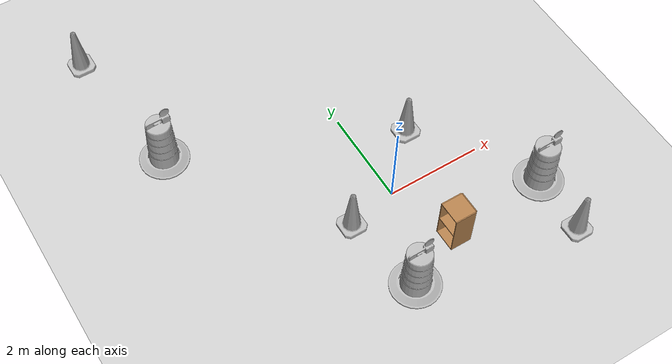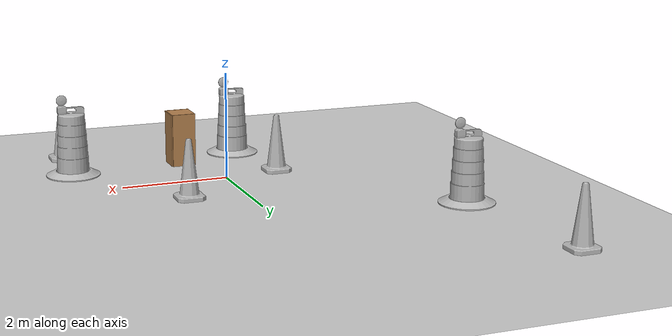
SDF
<sdf version="1.7">
 <world name="default">
  <light name="sun" type="directional">
   <pose>0 0 10 0 -0 0</pose>
   <diffuse>0.8 0.8 0.8 1</diffuse>
   <specular>0.2 0.2 0.2 1</specular>
   <attenuation>
    <range>1000</range>
    <constant>0.9</constant>
    <linear>0.01</linear>
    <quadratic>0.001</quadratic>
   </attenuation>
   <direction>-0.5 0.1 -0.9</direction>
   <spot><inner_angle>0</inner_angle><outer_angle>0</outer_angle><falloff>0</falloff></spot>
  </light>
  <model name="ground_plane">
   <static>1</static>
   <link name="link">
    <collision name="collision">
     <geometry><plane><normal>0 0 1</normal><size>100 100</size></plane></geometry>
     <surface>
      <contact><collide_bitmask>65535</collide_bitmask></contact>
      <friction><ode><mu>100</mu><mu2>50</mu2></ode></friction>
     </surface>
    </collision>
    <visual name="visual">
     <cast_shadows>0</cast_shadows>
     <geometry><plane><normal>0 0 1</normal><size>100 100</size></plane></geometry>
     <material>
      <script><uri>file://media/materials/scripts/gazebo.material</uri><name>Gazebo/Grey</name></script>
     </material>
    </visual>
   </link>
  </model>
  <gravity>0 0 -9.8</gravity>
  <magnetic_field>6e-06 2.3e-05 -4.2e-05</magnetic_field>
  <atmosphere type="adiabatic"/>
  <physics type="ode">
   <max_step_size>0.001</max_step_size>
   <real_time_factor>1</real_time_factor>
   <real_time_update_rate>1000</real_time_update_rate>
  </physics>
  <scene><ambient>0.4 0.4 0.4 1</ambient><background>0.7 0.7 0.7 1</background><shadows>1</shadows></scene>
  <spherical_coordinates>
   <surface_model>EARTH_WGS84</surface_model>
   <latitude_deg>0</latitude_deg>
   <longitude_deg>0</longitude_deg>
   <elevation>0</elevation>
   <heading_deg>0</heading_deg>
  </spherical_coordinates>
  <model name="cabinet">
   <static>1</static>
   <link name="cabinet_bottom_plate">
    <inertial>
     <pose>0 0 -1 0 -0 0</pose>
     <inertia><ixx>2.05</ixx><ixy>0</ixy><ixz>0</ixz><iyy>2.05</iyy><iyz>0</iyz><izz>2.05</izz></inertia>
     <mass>25</mass>
    </inertial>
    <collision name="cabinet_bottom_plate_geom">
     <pose>0 0 0.01 0 -0 0</pose>
     <geometry><box><size>0.45 0.45 0.02</size></box></geometry>
    </collision>
    <visual name="cabinet_bottom_plate_geom_visual">
     <pose>0 0 0.01 0 -0 0</pose>
     <geometry><box><size>0.45 0.45 0.02</size></box></geometry>
     <material>
      <script><uri>file://media/materials/scripts/gazebo.material</uri><name>Gazebo/Wood</name></script>
     </material>
    </visual>
    <collision name="cabinet_bottom_plate_geom_cabinet_back_plate">
     <pose>0.235 0 0.51 0 -0 0</pose>
     <geometry><box><size>0.02 0.45 1.02</size></box></geometry>
    </collision>
    <visual name="cabinet_bottom_plate_geom_cabinet_back_plate_visual">
     <pose>0.235 0 0.51 0 -0 0</pose>
     <geometry><box><size>0.02 0.45 1.02</size></box></geometry>
     <material>
      <script><uri>file://media/materials/scripts/gazebo.material</uri><name>Gazebo/Wood</name></script>
     </material>
    </visual>
    <collision name="cabinet_bottom_plate_geom_cabinet_left_plate">
     <pose>0 0.235 0.51 0 -0 0</pose>
     <geometry><box><size>0.45 0.02 1.02</size></box></geometry>
    </collision>
    <visual name="cabinet_bottom_plate_geom_cabinet_left_plate_visual">
     <pose>0 0.235 0.51 0 -0 0</pose>
     <geometry><box><size>0.45 0.02 1.02</size></box></geometry>
     <material>
      <script><uri>file://media/materials/scripts/gazebo.material</uri><name>Gazebo/Wood</name></script>
     </material>
    </visual>
    <collision name="cabinet_bottom_plate_geom_cabinet_middle_plate">
     <pose>0 0 0.51 0 -0 0</pose>
     <geometry><box><size>0.45 0.45 0.02</size></box></geometry>
    </collision>
    <visual name="cabinet_bottom_plate_geom_cabinet_middle_plate_visual">
     <pose>0 0 0.51 0 -0 0</pose>
     <geometry><box><size>0.45 0.45 0.02</size></box></geometry>
     <material>
      <script><uri>file://media/materials/scripts/gazebo.material</uri><name>Gazebo/Wood</name></script>
     </material>
    </visual>
    <collision name="cabinet_bottom_plate_geom_cabinet_right_plate">
     <pose>0 -0.235 0.51 0 -0 0</pose>
     <geometry><box><size>0.45 0.02 1.02</size></box></geometry>
    </collision>
    <visual name="cabinet_bottom_plate_geom_cabinet_right_plate_visual">
     <pose>0 -0.235 0.51 0 -0 0</pose>
     <geometry><box><size>0.45 0.02 1.02</size></box></geometry>
     <material>
      <script><uri>file://media/materials/scripts/gazebo.material</uri><name>Gazebo/Wood</name></script>
     </material>
    </visual>
    <collision name="cabinet_bottom_plate_geom_cabinet_top_plate">
     <pose>0 0 1.01 0 -0 0</pose>
     <geometry><box><size>0.45 0.45 0.02</size></box></geometry>
    </collision>
    <visual name="cabinet_bottom_plate_geom_cabinet_top_plate_visual">
     <pose>0 0 1.01 0 -0 0</pose>
     <geometry><box><size>0.45 0.45 0.02</size></box></geometry>
     <material>
      <script><uri>file://media/materials/scripts/gazebo.material</uri><name>Gazebo/Wood</name></script>
     </material>
    </visual>
   </link>
   <pose>0.492688 -1.384 0 0 -0 0</pose>
  </model>
  <model name="Construction Cone">
   <link name="link">
    <collision name="collision">
     <geometry>
      <mesh><scale>10 10 10</scale><uri>model://construction_cone/meshes/construction_cone.dae</uri></mesh>
     </geometry>
    </collision>
    <visual name="visual">
     <geometry>
      <mesh><scale>10 10 10</scale><uri>model://construction_cone/meshes/construction_cone.dae</uri></mesh>
     </geometry>
    </visual>
    <inertial>
     <inertia><ixx>1</ixx><ixy>0</ixy><ixz>0</ixz><iyy>1</iyy><iyz>0</iyz><izz>1</izz></inertia>
     <mass>1</mass>
    </inertial>
   </link>
   <pose>-1.05495 -0.188933 -0 0 -0 0</pose>
  </model>
  <model name="Construction Cone_0">
   <link name="link">
    <collision name="collision">
     <geometry>
      <mesh><scale>10 10 10</scale><uri>model://construction_cone/meshes/construction_cone.dae</uri></mesh>
     </geometry>
    </collision>
    <visual name="visual">
     <geometry>
      <mesh><scale>10 10 10</scale><uri>model://construction_cone/meshes/construction_cone.dae</uri></mesh>
     </geometry>
    </visual>
    <inertial>
     <inertia><ixx>1</ixx><ixy>0</ixy><ixz>0</ixz><iyy>1</iyy><iyz>0</iyz><izz>1</izz></inertia>
     <mass>1</mass>
    </inertial>
   </link>
   <pose>1.05482 1.09958 -0 0 -0 0</pose>
  </model>
  <model name="Construction Cone_1">
   <link name="link">
    <collision name="collision">
     <geometry>
      <mesh><scale>10 10 10</scale><uri>model://construction_cone/meshes/construction_cone.dae</uri></mesh>
     </geometry>
    </collision>
    <visual name="visual">
     <geometry>
      <mesh><scale>10 10 10</scale><uri>model://construction_cone/meshes/construction_cone.dae</uri></mesh>
     </geometry>
    </visual>
    <inertial>
     <inertia><ixx>1</ixx><ixy>0</ixy><ixz>0</ixz><iyy>1</iyy><iyz>0</iyz><izz>1</izz></inertia>
     <mass>1</mass>
    </inertial>
   </link>
   <pose>-3.85979 6.04417 -0 0 -1e-06 0</pose>
  </model>
  <model name="Construction Cone_2">
   <link name="link">
    <collision name="collision">
     <geometry>
      <mesh><scale>10 10 10</scale><uri>model://construction_cone/meshes/construction_cone.dae</uri></mesh>
     </geometry>
    </collision>
    <visual name="visual">
     <geometry>
      <mesh><scale>10 10 10</scale><uri>model://construction_cone/meshes/construction_cone.dae</uri></mesh>
     </geometry>
    </visual>
    <inertial>
     <inertia><ixx>1</ixx><ixy>0</ixy><ixz>0</ixz><iyy>1</iyy><iyz>0</iyz><izz>1</izz></inertia>
     <mass>1</mass>
    </inertial>
   </link>
   <pose>2.59814 -2.50222 -0 0 -0 0</pose>
  </model>
  <model name="Construction Barrel">
   <link name="link">
    <inertial>
     <pose>0 0 0.4 0 -0 0</pose>
     <mass>500</mass>
     <inertia><ixx>51.2096</ixx><iyy>51.2096</iyy><izz>25</izz><ixy>0</ixy><ixz>0</ixz><iyz>0</iyz></inertia>
    </inertial>
    <collision name="collision">
     <geometry><mesh><uri>model://construction_barrel/meshes/construction_barrel.dae</uri></mesh></geometry>
    </collision>
    <visual name="visual">
     <geometry><mesh><uri>model://construction_barrel/meshes/construction_barrel.dae</uri></mesh></geometry>
    </visual>
   </link>
   <pose>-0.717053 -1.87055 -3e-06 -4e-06 -5e-06 -8e-06</pose>
  </model>
  <model name="Construction Barrel_0">
   <link name="link">
    <inertial>
     <pose>0 0 0.4 0 -0 0</pose>
     <mass>500</mass>
     <inertia><ixx>51.2096</ixx><iyy>51.2096</iyy><izz>25</izz><ixy>0</ixy><ixz>0</ixz><iyz>0</iyz></inertia>
    </inertial>
    <collision name="collision">
     <geometry><mesh><uri>model://construction_barrel/meshes/construction_barrel.dae</uri></mesh></geometry>
    </collision>
    <visual name="visual">
     <geometry><mesh><uri>model://construction_barrel/meshes/construction_barrel.dae</uri></mesh></geometry>
    </visual>
   </link>
   <pose>2.65232 -1.22827 -1e-06 -0 4e-06 -7e-06</pose>
  </model>
  <model name="Construction Barrel_1">
   <link name="link">
    <inertial>
     <pose>0 0 0.4 0 -0 0</pose>
     <mass>500</mass>
     <inertia><ixx>51.2096</ixx><iyy>51.2096</iyy><izz>25</izz><ixy>0</ixy><ixz>0</ixz><iyz>0</iyz></inertia>
    </inertial>
    <collision name="collision">
     <geometry><mesh><uri>model://construction_barrel/meshes/construction_barrel.dae</uri></mesh></geometry>
    </collision>
    <visual name="visual">
     <geometry><mesh><uri>model://construction_barrel/meshes/construction_barrel.dae</uri></mesh></geometry>
    </visual>
   </link>
   <pose>-3.42269 3.06468 -1e-06 -8e-06 -2e-06 -4e-06</pose>
  </model>
 </world>
</sdf>
